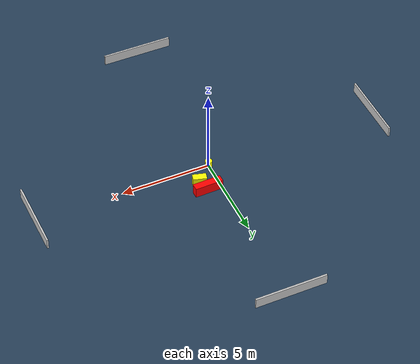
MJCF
<?xml version="1.0" ?>
<mujoco model="generated_environment">
  <option timestep="0.01" integrator="RK4" cone="elliptic"/>
  <default>
    <geom density="1"/>
  </default>
  <asset>
    <texture builtin="gradient" height="3072" name="skybox" rgb1="0.3 0.5 0.7" rgb2="0 0 0" type="skybox" width="512"/>
    <texture builtin="checker" height="300" name="groundplane" rgb1="0.2 0.3 0.4" rgb2="0.1 0.2 0.3" type="2d" width="300"/>
    <material name="groundplane" reflectance="0.2" texrepeat="5 5" texture="groundplane"/>
  </asset>
  <worldbody>
    <light dir="0 0 -1" directional="true" pos="0 0 1.5"/>
    <geom condim="3" friction="0.5 0.005 0.001" material="groundplane" name="floor" pos="0 0 0" size="0 0 0.05" type="plane"/>
    <body name="walls">
      <geom name="wall_1" condim="4" pos="-10.0 0.0 0.3" rgba="0.800000011920929 0.800000011920929 0.800000011920929 1.0" size="0.05 2.0 0.3" type="box"/>
      <geom name="wall_2" condim="4" pos="10.0 0.0 0.3" rgba="0.800000011920929 0.800000011920929 0.800000011920929 1.0" size="0.05 2.0 0.3" type="box"/>
      <geom name="wall_3" condim="4" pos="0.0 -10.0 0.3" rgba="0.800000011920929 0.800000011920929 0.800000011920929 1.0" size="2.0 0.05 0.3" type="box"/>
      <geom name="wall_4" condim="4" pos="0.0 10.0 0.3" rgba="0.800000011920929 0.800000011920929 0.800000011920929 1.0" size="2.0 0.05 0.3" type="box"/>
    </body>
    <body name="robot">
      <joint name="joint_x" type="slide" pos="0 0 0" axis="1 0 0"/>
      <joint name="joint_y" type="slide" pos="0 0 0" axis="0 1 0"/>
      <geom name="robot" type="cylinder" pos="0.0 0.0 0.2" size="0.2 0.2 0.0" mass="5.0" friction="1.0 0.005 0.0001" condim="4" rgba="1.0 1.0 0.0 1.0"/>
    </body>
    <body name="obstacle_1_movable">
      <geom name="obstacle_1_movable" condim="4" pos="1.009623396377426 1.0606946684512024 0.3" euler="0 0 164.59580064772499" friction="0.0 0.005 0.001" rgba="1.0 1.0 0.0 1.0" size="0.3792310327347792 0.20111809687640964 0.3" type="box" mass="0.1"/>
      <joint type="free"/>
    </body>
    <body name="obstacle_2_static">
      <geom name="obstacle_2_static" condim="4" pos="0.7865613626731859 1.650092378108103 0.3" euler="0 0 1.2501605226801038" friction="0.0 0.005 0.001" rgba="1.0 0.0 0.0 1.0" size="0.791838083481091 0.20047567235910133 0.3" type="box"/>
    </body>
  </worldbody>
  <actuator>
    <motor name="actuator_x" joint="joint_x" gear="1" ctrlrange="-1 1"/>
    <motor name="actuator_y" joint="joint_y" gear="1" ctrlrange="-1 1"/>
  </actuator>
</mujoco>
